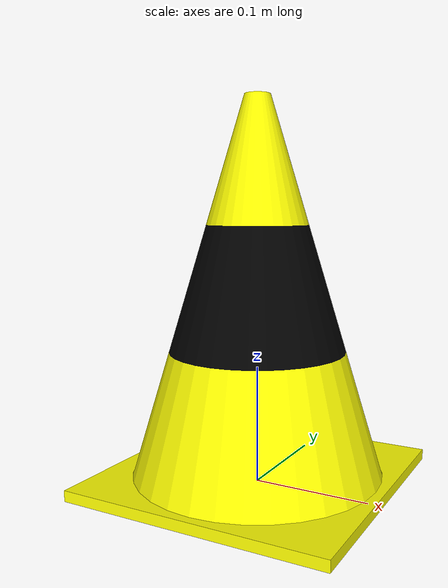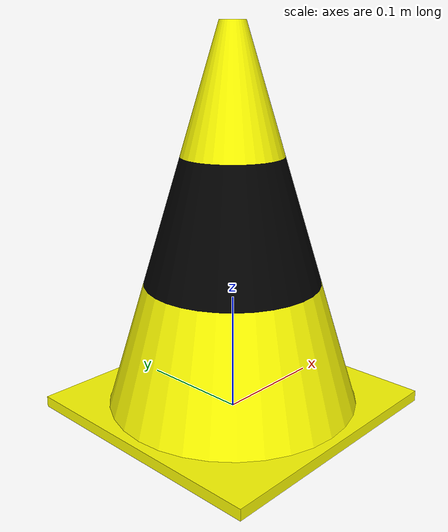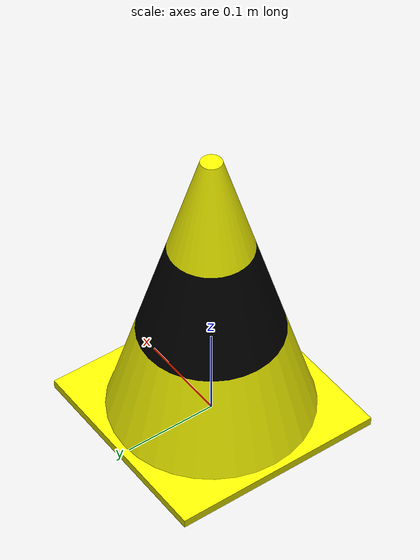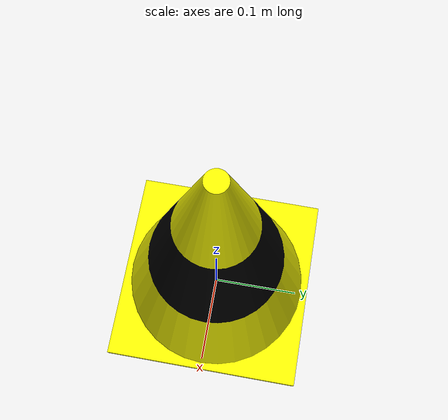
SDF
<?xml version='1.0'?>
<sdf version="1.4">
  <model name="small_yellow_cone">
    <pose>0 0 0 0 0 0</pose>
    <static>true</static>
    <link name="link_small_yellow_cone">
      <inertial>
        <mass>0.45</mass>
        <inertia>
          <ixx>0.025227675</ixx>
          <ixy>0.0</ixy>
          <ixz>0.0</ixz>
          <iyy>0.025227675</iyy>
          <iyz>0.0</iyz>
          <izz>0.0029</izz>
        </inertia>
      </inertial>
      <collision name="collision_small_yellow_cone">
        <geometry>
          <box>
            <size>0.228 0.228 0.325</size>
          </box>
        </geometry>
      </collision>
      <visual name="visual_small_yellow_cone">
        <geometry>
          <mesh>
	    <uri>file://../meshes/small_yellow_cone.dae</uri>
          </mesh>
        </geometry>
      </visual>
    </link>
  </model>
</sdf>
